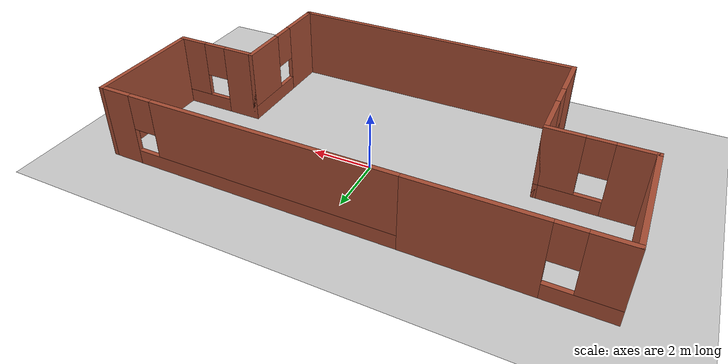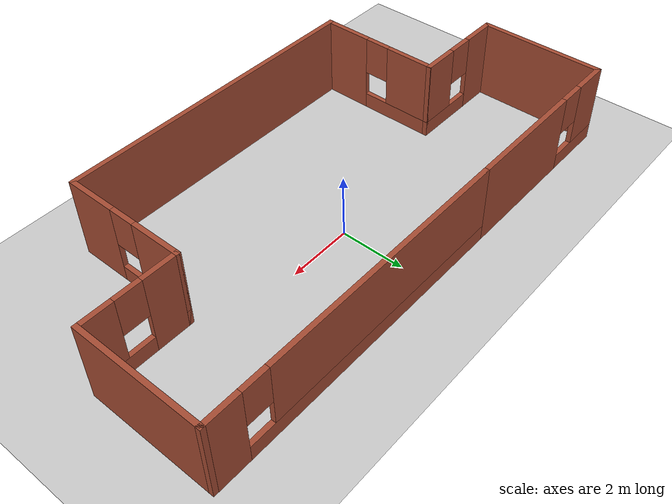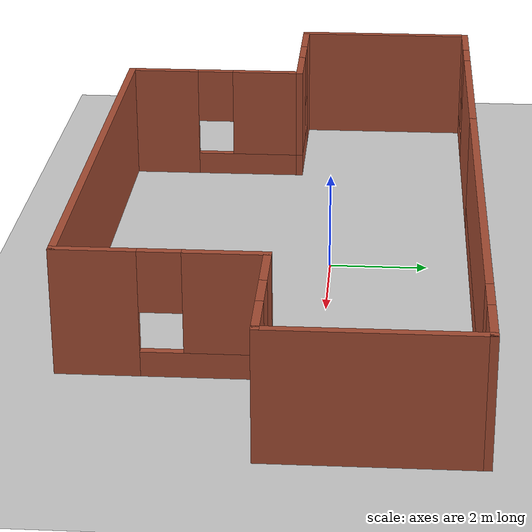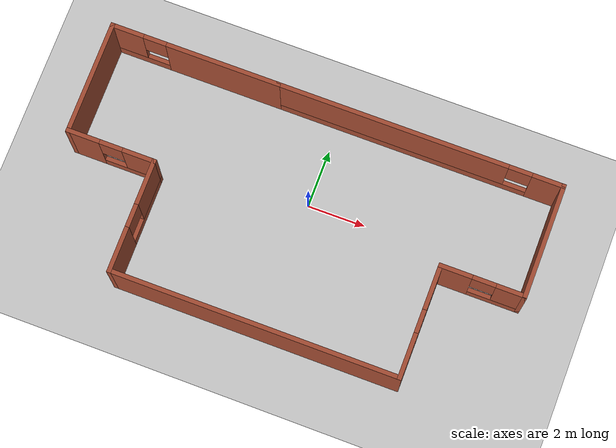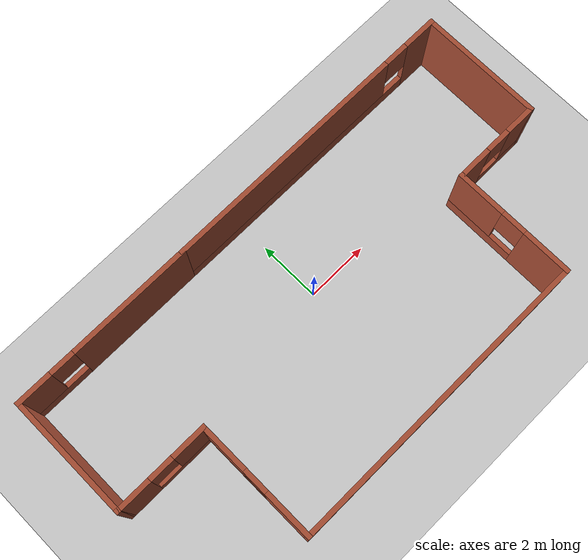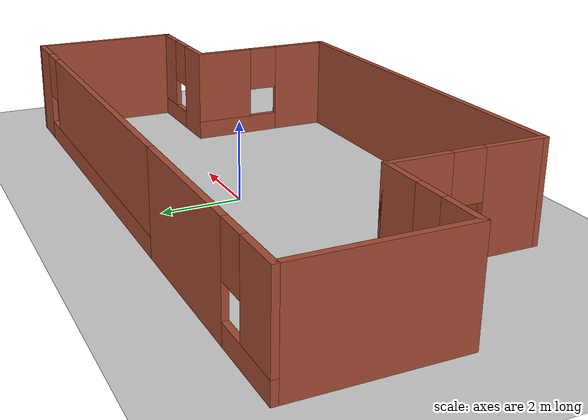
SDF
<sdf version="1.4">
 <world name="default">
  <include><uri>model://sun</uri></include>
  <include><uri>model://ground_plane</uri></include>
  <physics type="ode">
   <real_time_update_rate>1000.0</real_time_update_rate>
   <max_step_size>0.001</max_step_size>
   <real_time_factor>1</real_time_factor>
   <ode>
    <solver>
     <type>quick</type>
     <iters>150</iters>
     <precon_iters>0</precon_iters>
     <sor>1.400000</sor>
     <use_dynamic_moi_rescaling>1</use_dynamic_moi_rescaling>
    </solver>
    <constraints>
     <cfm>0.00001</cfm>
     <erp>0.2</erp>
     <contact_max_correcting_vel>2000.000000</contact_max_correcting_vel>
     <contact_surface_layer>0.01000</contact_surface_layer>
    </constraints>
   </ode>
  </physics>
  <include><uri>model://custom_house</uri></include>
  <scene><ambient>0.4 0.4 0.4 1</ambient><background>0.7 0.7 0.7 1</background><shadows>true</shadows></scene>
 </world>
</sdf>

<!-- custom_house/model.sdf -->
<sdf version='1.7'>
  <model name='custom_house'>
    <pose>-0.14 -0.92 0 0 -0 0</pose>
    <link name='Wall_10'>
      <collision name='Wall_10_Collision'>
        <geometry>
          <box>
            <size>4 0.15 2.5</size>
          </box>
        </geometry>
        <pose>0 0 1.25 0 -0 0</pose>
      </collision>
      <visual name='Wall_10_Visual'>
        <pose>0 0 1.25 0 -0 0</pose>
        <geometry>
          <box>
            <size>4 0.15 2.5</size>
          </box>
        </geometry>
        <material>
          <script>
            <uri>file://media/materials/scripts/gazebo.material</uri>
            <name>Gazebo/Bricks</name>
          </script>
          <ambient>1 1 1 1</ambient>
        </material>
        <meta>
          <layer>0</layer>
        </meta>
      </visual>
      <pose>7.85 1.925 0 0 -0 1.5708</pose>
    </link>
    <link name='Wall_11'>
      <pose>2.925 3.85 0 0 -0 3.14159</pose>
      <visual name='Wall_11_Visual_0'>
        <pose>-4.4275 0 1.25 0 -0 0</pose>
        <geometry>
          <box>
            <size>1.145 0.15 2.5</size>
          </box>
        </geometry>
        <material>
          <script>
            <uri>file://media/materials/scripts/gazebo.material</uri>
            <name>Gazebo/Bricks</name>
          </script>
          <ambient>1 1 1 1</ambient>
        </material>
        <meta>
          <layer>0</layer>
        </meta>
      </visual>
      <collision name='Wall_11_Collision_0'>
        <geometry>
          <box>
            <size>1.145 0.15 2.5</size>
          </box>
        </geometry>
        <pose>-4.4275 0 1.25 0 -0 0</pose>
      </collision>
      <visual name='Wall_11_Visual_1'>
        <pose>0.5725 0 0.25 0 -0 0</pose>
        <geometry>
          <box>
            <size>8.855 0.15 0.5</size>
          </box>
        </geometry>
        <material>
          <script>
            <uri>file://media/materials/scripts/gazebo.material</uri>
            <name>Gazebo/Bricks</name>
          </script>
          <ambient>1 1 1 1</ambient>
        </material>
        <meta>
          <layer>0</layer>
        </meta>
      </visual>
      <collision name='Wall_11_Collision_1'>
        <geometry>
          <box>
            <size>8.855 0.15 0.5</size>
          </box>
        </geometry>
        <pose>0.5725 0 0.25 0 -0 0</pose>
      </collision>
      <visual name='Wall_11_Visual_2'>
        <pose>0.9725 0 1.5 0 -0 0</pose>
        <geometry>
          <box>
            <size>8.055 0.15 2</size>
          </box>
        </geometry>
        <material>
          <script>
            <uri>file://media/materials/scripts/gazebo.material</uri>
            <name>Gazebo/Bricks</name>
          </script>
          <ambient>1 1 1 1</ambient>
        </material>
        <meta>
          <layer>0</layer>
        </meta>
      </visual>
      <collision name='Wall_11_Collision_2'>
        <geometry>
          <box>
            <size>8.055 0.15 2</size>
          </box>
        </geometry>
        <pose>0.9725 0 1.5 0 -0 0</pose>
      </collision>
      <visual name='Wall_11_Visual_3'>
        <pose>-3.455 0 1.9 0 -0 0</pose>
        <geometry>
          <box>
            <size>0.8 0.15 1.2</size>
          </box>
        </geometry>
        <material>
          <script>
            <uri>file://media/materials/scripts/gazebo.material</uri>
            <name>Gazebo/Bricks</name>
          </script>
          <ambient>1 1 1 1</ambient>
        </material>
        <meta>
          <layer>0</layer>
        </meta>
      </visual>
      <collision name='Wall_11_Collision_3'>
        <geometry>
          <box>
            <size>0.8 0.15 1.2</size>
          </box>
        </geometry>
        <pose>-3.455 0 1.9 0 -0 0</pose>
      </collision>
    </link>
    <link name='Wall_13'>
      <pose>-4.925 3.85 0 0 -0 3.14159</pose>
      <visual name='Wall_13_Visual_0'>
        <pose>-0.9925 0 1.25 0 -0 0</pose>
        <geometry>
          <box>
            <size>4.015 0.15 2.5</size>
          </box>
        </geometry>
        <material>
          <script>
            <uri>file://media/materials/scripts/gazebo.material</uri>
            <name>Gazebo/Bricks</name>
          </script>
          <ambient>1 1 1 1</ambient>
        </material>
        <meta>
          <layer>0</layer>
        </meta>
      </visual>
      <collision name='Wall_13_Collision_0'>
        <geometry>
          <box>
            <size>4.015 0.15 2.5</size>
          </box>
        </geometry>
        <pose>-0.9925 0 1.25 0 -0 0</pose>
      </collision>
      <visual name='Wall_13_Visual_1'>
        <pose>2.0075 0 0.25 0 -0 0</pose>
        <geometry>
          <box>
            <size>1.985 0.15 0.5</size>
          </box>
        </geometry>
        <material>
          <script>
            <uri>file://media/materials/scripts/gazebo.material</uri>
            <name>Gazebo/Bricks</name>
          </script>
          <ambient>1 1 1 1</ambient>
        </material>
        <meta>
          <layer>0</layer>
        </meta>
      </visual>
      <collision name='Wall_13_Collision_1'>
        <geometry>
          <box>
            <size>1.985 0.15 0.5</size>
          </box>
        </geometry>
        <pose>2.0075 0 0.25 0 -0 0</pose>
      </collision>
      <visual name='Wall_13_Visual_2'>
        <pose>2.4075 0 1.5 0 -0 0</pose>
        <geometry>
          <box>
            <size>1.185 0.15 2</size>
          </box>
        </geometry>
        <material>
          <script>
            <uri>file://media/materials/scripts/gazebo.material</uri>
            <name>Gazebo/Bricks</name>
          </script>
          <ambient>1 1 1 1</ambient>
        </material>
        <meta>
          <layer>0</layer>
        </meta>
      </visual>
      <collision name='Wall_13_Collision_2'>
        <geometry>
          <box>
            <size>1.185 0.15 2</size>
          </box>
        </geometry>
        <pose>2.4075 0 1.5 0 -0 0</pose>
      </collision>
      <visual name='Wall_13_Visual_3'>
        <pose>1.415 0 1.9 0 -0 0</pose>
        <geometry>
          <box>
            <size>0.8 0.15 1.2</size>
          </box>
        </geometry>
        <material>
          <script>
            <uri>file://media/materials/scripts/gazebo.material</uri>
            <name>Gazebo/Bricks</name>
          </script>
          <ambient>1 1 1 1</ambient>
        </material>
        <meta>
          <layer>0</layer>
        </meta>
      </visual>
      <collision name='Wall_13_Collision_3'>
        <geometry>
          <box>
            <size>0.8 0.15 1.2</size>
          </box>
        </geometry>
        <pose>1.415 0 1.9 0 -0 0</pose>
      </collision>
    </link>
    <link name='Wall_14'>
      <collision name='Wall_14_Collision'>
        <geometry>
          <box>
            <size>4 0.15 2.5</size>
          </box>
        </geometry>
        <pose>0 0 1.25 0 -0 0</pose>
      </collision>
      <visual name='Wall_14_Visual'>
        <pose>0 0 1.25 0 -0 0</pose>
        <geometry>
          <box>
            <size>4 0.15 2.5</size>
          </box>
        </geometry>
        <material>
          <script>
            <uri>file://media/materials/scripts/gazebo.material</uri>
            <name>Gazebo/Bricks</name>
          </script>
          <ambient>1 1 1 1</ambient>
        </material>
        <meta>
          <layer>0</layer>
        </meta>
      </visual>
      <pose>-7.85 1.925 0 0 -0 -1.5708</pose>
    </link>
    <link name='Wall_15'>
      <pose>-6.35 0 0 0 -0 0</pose>
      <visual name='Wall_15_Visual_0'>
        <pose>-0.9875 0 1.25 0 -0 0</pose>
        <geometry>
          <box>
            <size>1.175 0.15 2.5</size>
          </box>
        </geometry>
        <material>
          <script>
            <uri>file://media/materials/scripts/gazebo.material</uri>
            <name>Gazebo/Bricks</name>
          </script>
          <ambient>1 1 1 1</ambient>
        </material>
        <meta>
          <layer>0</layer>
        </meta>
      </visual>
      <collision name='Wall_15_Collision_0'>
        <geometry>
          <box>
            <size>1.175 0.15 2.5</size>
          </box>
        </geometry>
        <pose>-0.9875 0 1.25 0 -0 0</pose>
      </collision>
      <visual name='Wall_15_Visual_1'>
        <pose>0.5875 0 0.25 0 -0 0</pose>
        <geometry>
          <box>
            <size>1.975 0.15 0.5</size>
          </box>
        </geometry>
        <material>
          <script>
            <uri>file://media/materials/scripts/gazebo.material</uri>
            <name>Gazebo/Bricks</name>
          </script>
          <ambient>1 1 1 1</ambient>
        </material>
        <meta>
          <layer>0</layer>
        </meta>
      </visual>
      <collision name='Wall_15_Collision_1'>
        <geometry>
          <box>
            <size>1.975 0.15 0.5</size>
          </box>
        </geometry>
        <pose>0.5875 0 0.25 0 -0 0</pose>
      </collision>
      <visual name='Wall_15_Visual_2'>
        <pose>0.9875 0 1.5 0 -0 0</pose>
        <geometry>
          <box>
            <size>1.175 0.15 2</size>
          </box>
        </geometry>
        <material>
          <script>
            <uri>file://media/materials/scripts/gazebo.material</uri>
            <name>Gazebo/Bricks</name>
          </script>
          <ambient>1 1 1 1</ambient>
        </material>
        <meta>
          <layer>0</layer>
        </meta>
      </visual>
      <collision name='Wall_15_Collision_2'>
        <geometry>
          <box>
            <size>1.175 0.15 2</size>
          </box>
        </geometry>
        <pose>0.9875 0 1.5 0 -0 0</pose>
      </collision>
      <visual name='Wall_15_Visual_3'>
        <pose>0 0 1.9 0 -0 0</pose>
        <geometry>
          <box>
            <size>0.8 0.15 1.2</size>
          </box>
        </geometry>
        <material>
          <script>
            <uri>file://media/materials/scripts/gazebo.material</uri>
            <name>Gazebo/Bricks</name>
          </script>
          <ambient>1 1 1 1</ambient>
        </material>
        <meta>
          <layer>0</layer>
        </meta>
      </visual>
      <collision name='Wall_15_Collision_3'>
        <geometry>
          <box>
            <size>0.8 0.15 1.2</size>
          </box>
        </geometry>
        <pose>0 0 1.9 0 -0 0</pose>
      </collision>
    </link>
    <link name='Wall_3'>
      <collision name='Wall_3_Collision'>
        <geometry>
          <box>
            <size>10 0.15 2.5</size>
          </box>
        </geometry>
        <pose>0 0 1.25 0 -0 0</pose>
      </collision>
      <visual name='Wall_3_Visual'>
        <pose>0 0 1.25 0 -0 0</pose>
        <geometry>
          <box>
            <size>10 0.15 2.5</size>
          </box>
        </geometry>
        <material>
          <script>
            <uri>file://media/materials/scripts/gazebo.material</uri>
            <name>Gazebo/Bricks</name>
          </script>
          <ambient>1 1 1 1</ambient>
        </material>
        <meta>
          <layer>0</layer>
        </meta>
      </visual>
      <pose>0.075 -3.85 0 0 -0 3.14159</pose>
    </link>
    <link name='Wall_4'>
      <pose>-4.85 -1.925 0 0 -0 1.5708</pose>
      <visual name='Wall_4_Visual_0'>
        <pose>-1.2025 0 1.25 0 -0 0</pose>
        <geometry>
          <box>
            <size>1.595 0.15 2.5</size>
          </box>
        </geometry>
        <material>
          <script>
            <uri>file://media/materials/scripts/gazebo.material</uri>
            <name>Gazebo/Bricks</name>
          </script>
          <ambient>1 1 1 1</ambient>
        </material>
        <meta>
          <layer>0</layer>
        </meta>
      </visual>
      <collision name='Wall_4_Collision_0'>
        <geometry>
          <box>
            <size>1.595 0.15 2.5</size>
          </box>
        </geometry>
        <pose>-1.2025 0 1.25 0 -0 0</pose>
      </collision>
      <visual name='Wall_4_Visual_1'>
        <pose>0.7975 0 0.25 0 -0 0</pose>
        <geometry>
          <box>
            <size>2.405 0.15 0.5</size>
          </box>
        </geometry>
        <material>
          <script>
            <uri>file://media/materials/scripts/gazebo.material</uri>
            <name>Gazebo/Bricks</name>
          </script>
          <ambient>1 1 1 1</ambient>
        </material>
        <meta>
          <layer>0</layer>
        </meta>
      </visual>
      <collision name='Wall_4_Collision_1'>
        <geometry>
          <box>
            <size>2.405 0.15 0.5</size>
          </box>
        </geometry>
        <pose>0.7975 0 0.25 0 -0 0</pose>
      </collision>
      <visual name='Wall_4_Visual_2'>
        <pose>1.1975 0 1.5 0 -0 0</pose>
        <geometry>
          <box>
            <size>1.605 0.15 2</size>
          </box>
        </geometry>
        <material>
          <script>
            <uri>file://media/materials/scripts/gazebo.material</uri>
            <name>Gazebo/Bricks</name>
          </script>
          <ambient>1 1 1 1</ambient>
        </material>
        <meta>
          <layer>0</layer>
        </meta>
      </visual>
      <collision name='Wall_4_Collision_2'>
        <geometry>
          <box>
            <size>1.605 0.15 2</size>
          </box>
        </geometry>
        <pose>1.1975 0 1.5 0 -0 0</pose>
      </collision>
      <visual name='Wall_4_Visual_3'>
        <pose>-0.005 0 1.9 0 -0 0</pose>
        <geometry>
          <box>
            <size>0.8 0.15 1.2</size>
          </box>
        </geometry>
        <material>
          <script>
            <uri>file://media/materials/scripts/gazebo.material</uri>
            <name>Gazebo/Bricks</name>
          </script>
          <ambient>1 1 1 1</ambient>
        </material>
        <meta>
          <layer>0</layer>
        </meta>
      </visual>
      <collision name='Wall_4_Collision_3'>
        <geometry>
          <box>
            <size>0.8 0.15 1.2</size>
          </box>
        </geometry>
        <pose>-0.005 0 1.9 0 -0 0</pose>
      </collision>
    </link>
    <link name='Wall_6'>
      <pose>5 -1.925 0 0 -0 1.5708</pose>
      <visual name='Wall_6_Visual_0'>
        <pose>-1.2025 0 1.25 0 -0 0</pose>
        <geometry>
          <box>
            <size>1.595 0.15 2.5</size>
          </box>
        </geometry>
        <material>
          <script>
            <uri>file://media/materials/scripts/gazebo.material</uri>
            <name>Gazebo/Bricks</name>
          </script>
          <ambient>1 1 1 1</ambient>
        </material>
        <meta>
          <layer>0</layer>
        </meta>
      </visual>
      <collision name='Wall_6_Collision_0'>
        <geometry>
          <box>
            <size>1.595 0.15 2.5</size>
          </box>
        </geometry>
        <pose>-1.2025 0 1.25 0 -0 0</pose>
      </collision>
      <visual name='Wall_6_Visual_1'>
        <pose>0.7975 0 0.25 0 -0 0</pose>
        <geometry>
          <box>
            <size>2.405 0.15 0.5</size>
          </box>
        </geometry>
        <material>
          <script>
            <uri>file://media/materials/scripts/gazebo.material</uri>
            <name>Gazebo/Bricks</name>
          </script>
          <ambient>1 1 1 1</ambient>
        </material>
        <meta>
          <layer>0</layer>
        </meta>
      </visual>
      <collision name='Wall_6_Collision_1'>
        <geometry>
          <box>
            <size>2.405 0.15 0.5</size>
          </box>
        </geometry>
        <pose>0.7975 0 0.25 0 -0 0</pose>
      </collision>
      <visual name='Wall_6_Visual_2'>
        <pose>1.1975 0 1.5 0 -0 0</pose>
        <geometry>
          <box>
            <size>1.605 0.15 2</size>
          </box>
        </geometry>
        <material>
          <script>
            <uri>file://media/materials/scripts/gazebo.material</uri>
            <name>Gazebo/Bricks</name>
          </script>
          <ambient>1 1 1 1</ambient>
        </material>
        <meta>
          <layer>0</layer>
        </meta>
      </visual>
      <collision name='Wall_6_Collision_2'>
        <geometry>
          <box>
            <size>1.605 0.15 2</size>
          </box>
        </geometry>
        <pose>1.1975 0 1.5 0 -0 0</pose>
      </collision>
      <visual name='Wall_6_Visual_3'>
        <pose>-0.005 0 1.9 0 -0 0</pose>
        <geometry>
          <box>
            <size>0.8 0.15 1.2</size>
          </box>
        </geometry>
        <material>
          <script>
            <uri>file://media/materials/scripts/gazebo.material</uri>
            <name>Gazebo/Bricks</name>
          </script>
          <ambient>1 1 1 1</ambient>
        </material>
        <meta>
          <layer>0</layer>
        </meta>
      </visual>
      <collision name='Wall_6_Collision_3'>
        <geometry>
          <box>
            <size>0.8 0.15 1.2</size>
          </box>
        </geometry>
        <pose>-0.005 0 1.9 0 -0 0</pose>
      </collision>
    </link>
    <link name='Wall_7'>
      <pose>6.425 0 0 0 -0 0</pose>
      <visual name='Wall_7_Visual_0'>
        <pose>-0.9225 0 1.25 0 -0 0</pose>
        <geometry>
          <box>
            <size>1.155 0.15 2.5</size>
          </box>
        </geometry>
        <material>
          <script>
            <uri>file://media/materials/scripts/gazebo.material</uri>
            <name>Gazebo/Bricks</name>
          </script>
          <ambient>1 1 1 1</ambient>
        </material>
        <meta>
          <layer>0</layer>
        </meta>
      </visual>
      <collision name='Wall_7_Collision_0'>
        <geometry>
          <box>
            <size>1.155 0.15 2.5</size>
          </box>
        </geometry>
        <pose>-0.9225 0 1.25 0 -0 0</pose>
      </collision>
      <visual name='Wall_7_Visual_1'>
        <pose>0.5775 0 0.25 0 -0 0</pose>
        <geometry>
          <box>
            <size>1.845 0.15 0.5</size>
          </box>
        </geometry>
        <material>
          <script>
            <uri>file://media/materials/scripts/gazebo.material</uri>
            <name>Gazebo/Bricks</name>
          </script>
          <ambient>1 1 1 1</ambient>
        </material>
        <meta>
          <layer>0</layer>
        </meta>
      </visual>
      <collision name='Wall_7_Collision_1'>
        <geometry>
          <box>
            <size>1.845 0.15 0.5</size>
          </box>
        </geometry>
        <pose>0.5775 0 0.25 0 -0 0</pose>
      </collision>
      <visual name='Wall_7_Visual_2'>
        <pose>0.9775 0 1.5 0 -0 0</pose>
        <geometry>
          <box>
            <size>1.045 0.15 2</size>
          </box>
        </geometry>
        <material>
          <script>
            <uri>file://media/materials/scripts/gazebo.material</uri>
            <name>Gazebo/Bricks</name>
          </script>
          <ambient>1 1 1 1</ambient>
        </material>
        <meta>
          <layer>0</layer>
        </meta>
      </visual>
      <collision name='Wall_7_Collision_2'>
        <geometry>
          <box>
            <size>1.045 0.15 2</size>
          </box>
        </geometry>
        <pose>0.9775 0 1.5 0 -0 0</pose>
      </collision>
      <visual name='Wall_7_Visual_3'>
        <pose>0.055 0 1.9 0 -0 0</pose>
        <geometry>
          <box>
            <size>0.8 0.15 1.2</size>
          </box>
        </geometry>
        <material>
          <script>
            <uri>file://media/materials/scripts/gazebo.material</uri>
            <name>Gazebo/Bricks</name>
          </script>
          <ambient>1 1 1 1</ambient>
        </material>
        <meta>
          <layer>0</layer>
        </meta>
      </visual>
      <collision name='Wall_7_Collision_3'>
        <geometry>
          <box>
            <size>0.8 0.15 1.2</size>
          </box>
        </geometry>
        <pose>0.055 0 1.9 0 -0 0</pose>
      </collision>
    </link>
    <static>1</static>
  </model>
</sdf>
